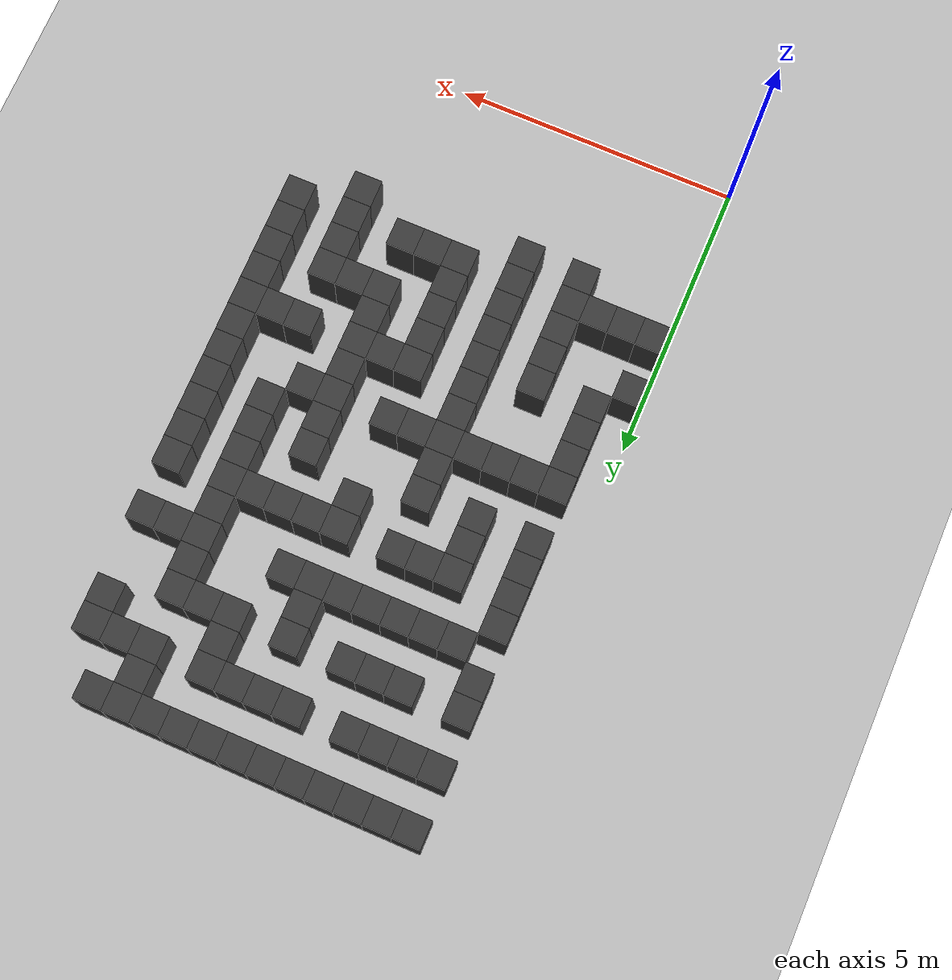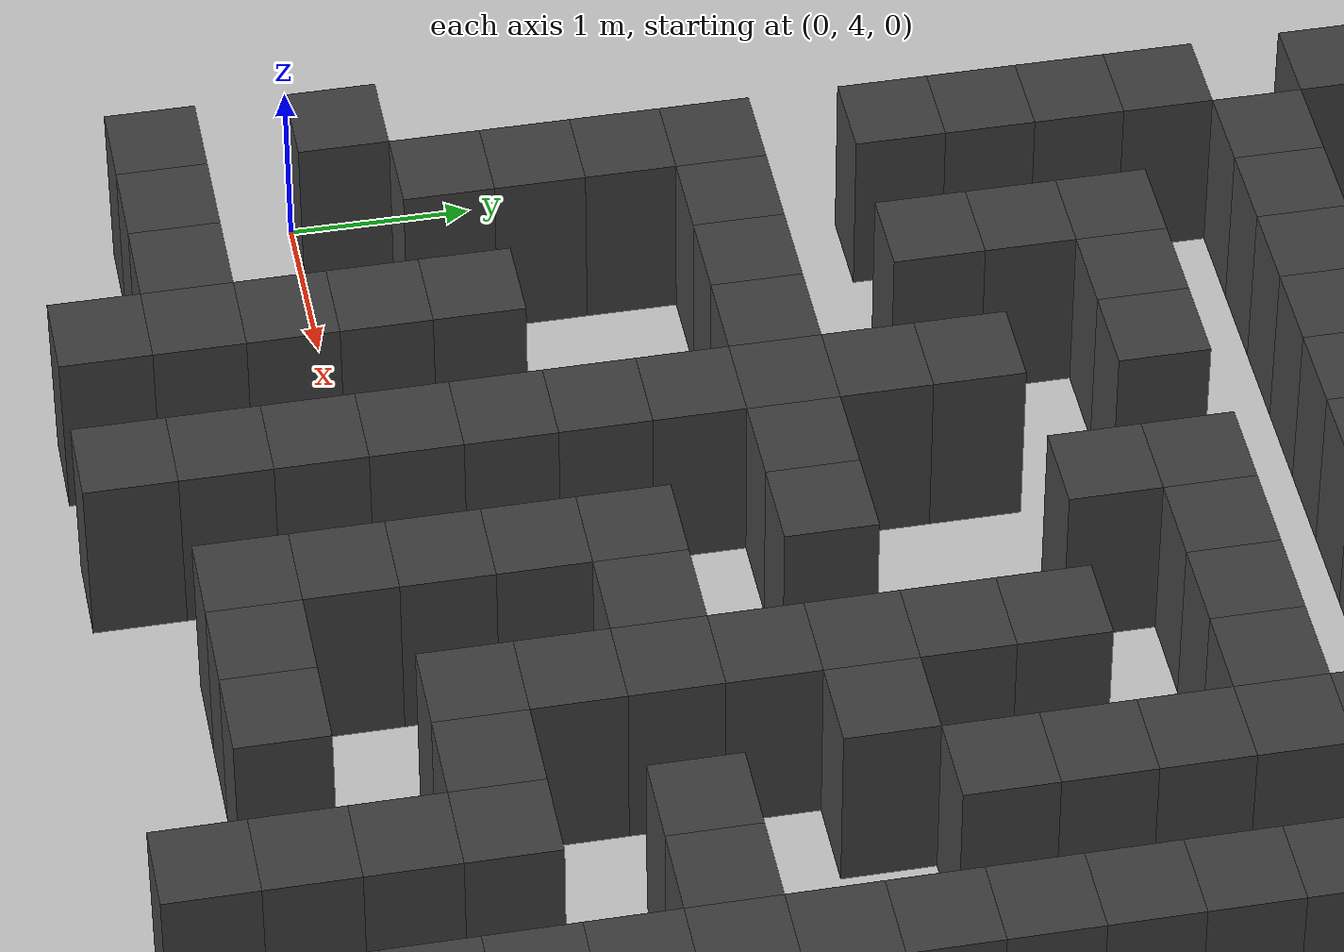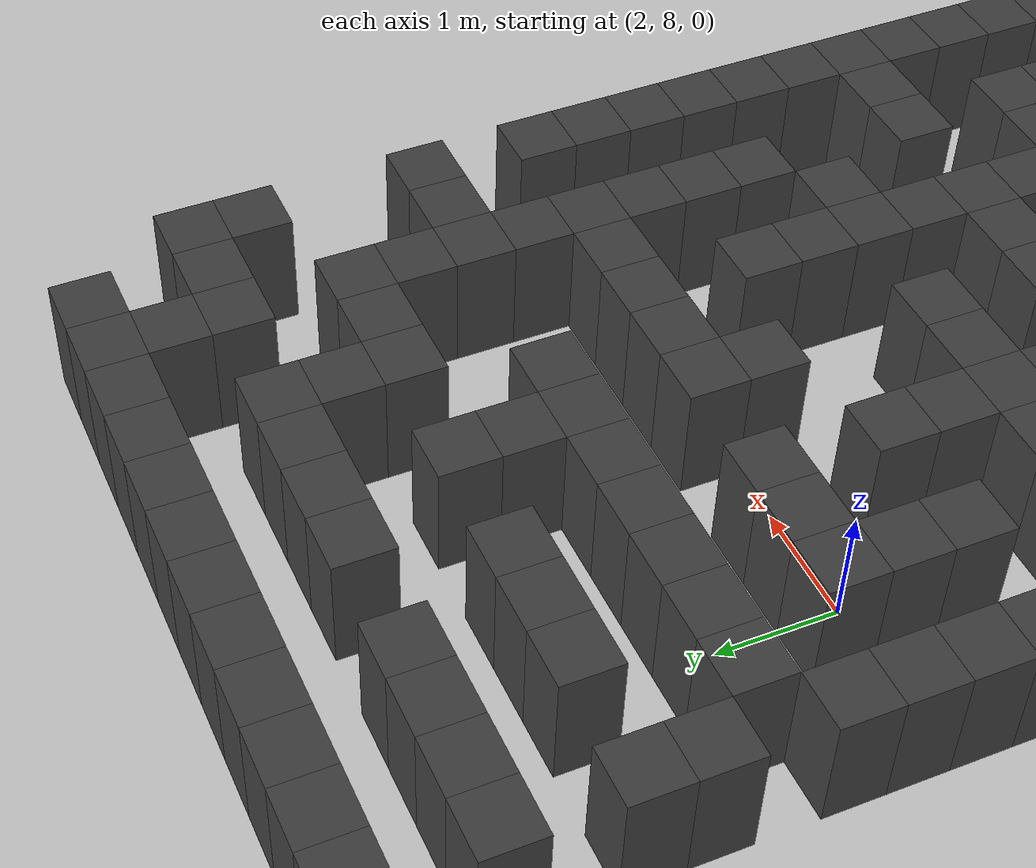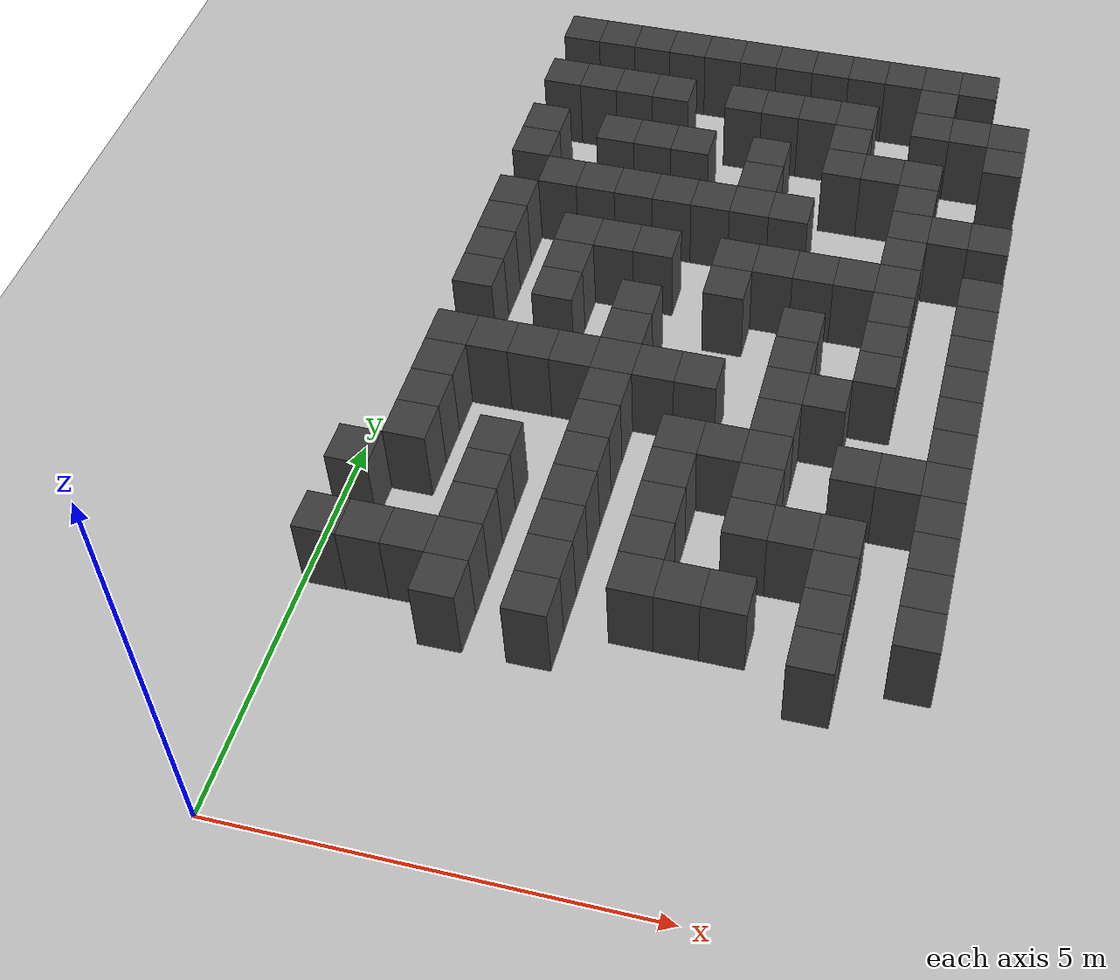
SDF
<sdf version="1.7">
 <world name="map_17503">
  <model name="ground_plane">
   <static>true</static>
   <link name="link">
    <collision name="collision">
     <geometry><plane><normal>0 0 1</normal><size>200 200</size></plane></geometry>
    </collision>
    <visual name="visual">
     <geometry><plane><normal>0 0 1</normal><size>200 200</size></plane></geometry>
     <material><ambient>0.8 0.8 0.8 1</ambient><diffuse>0.8 0.8 0.8 1</diffuse></material>
    </visual>
   </link>
  </model>
  <model name="maze_environment">
   <static>true</static>
   <link name="wall_26">
    <pose>0.750 12.250 0.500 0 0 0</pose>
    <collision name="col"><geometry><box><size>0.5 0.5 1.0</size></box></geometry></collision>
    <visual name="vis">
     <geometry><box><size>0.5 0.5 1.0</size></box></geometry>
     <material><ambient>0.15 0.15 0.15 1</ambient><diffuse>0.25 0.25 0.25 1</diffuse></material>
    </visual>
   </link>
   <link name="wall_27">
    <pose>1.250 12.250 0.500 0 0 0</pose>
    <collision name="col"><geometry><box><size>0.5 0.5 1.0</size></box></geometry></collision>
    <visual name="vis">
     <geometry><box><size>0.5 0.5 1.0</size></box></geometry>
     <material><ambient>0.15 0.15 0.15 1</ambient><diffuse>0.25 0.25 0.25 1</diffuse></material>
    </visual>
   </link>
   <link name="wall_28">
    <pose>1.750 12.250 0.500 0 0 0</pose>
    <collision name="col"><geometry><box><size>0.5 0.5 1.0</size></box></geometry></collision>
    <visual name="vis">
     <geometry><box><size>0.5 0.5 1.0</size></box></geometry>
     <material><ambient>0.15 0.15 0.15 1</ambient><diffuse>0.25 0.25 0.25 1</diffuse></material>
    </visual>
   </link>
   <link name="wall_29">
    <pose>2.250 12.250 0.500 0 0 0</pose>
    <collision name="col"><geometry><box><size>0.5 0.5 1.0</size></box></geometry></collision>
    <visual name="vis">
     <geometry><box><size>0.5 0.5 1.0</size></box></geometry>
     <material><ambient>0.15 0.15 0.15 1</ambient><diffuse>0.25 0.25 0.25 1</diffuse></material>
    </visual>
   </link>
   <link name="wall_30">
    <pose>2.750 12.250 0.500 0 0 0</pose>
    <collision name="col"><geometry><box><size>0.5 0.5 1.0</size></box></geometry></collision>
    <visual name="vis">
     <geometry><box><size>0.5 0.5 1.0</size></box></geometry>
     <material><ambient>0.15 0.15 0.15 1</ambient><diffuse>0.25 0.25 0.25 1</diffuse></material>
    </visual>
   </link>
   <link name="wall_31">
    <pose>3.250 12.250 0.500 0 0 0</pose>
    <collision name="col"><geometry><box><size>0.5 0.5 1.0</size></box></geometry></collision>
    <visual name="vis">
     <geometry><box><size>0.5 0.5 1.0</size></box></geometry>
     <material><ambient>0.15 0.15 0.15 1</ambient><diffuse>0.25 0.25 0.25 1</diffuse></material>
    </visual>
   </link>
   <link name="wall_32">
    <pose>3.750 12.250 0.500 0 0 0</pose>
    <collision name="col"><geometry><box><size>0.5 0.5 1.0</size></box></geometry></collision>
    <visual name="vis">
     <geometry><box><size>0.5 0.5 1.0</size></box></geometry>
     <material><ambient>0.15 0.15 0.15 1</ambient><diffuse>0.25 0.25 0.25 1</diffuse></material>
    </visual>
   </link>
   <link name="wall_33">
    <pose>4.250 12.250 0.500 0 0 0</pose>
    <collision name="col"><geometry><box><size>0.5 0.5 1.0</size></box></geometry></collision>
    <visual name="vis">
     <geometry><box><size>0.5 0.5 1.0</size></box></geometry>
     <material><ambient>0.15 0.15 0.15 1</ambient><diffuse>0.25 0.25 0.25 1</diffuse></material>
    </visual>
   </link>
   <link name="wall_34">
    <pose>4.750 12.250 0.500 0 0 0</pose>
    <collision name="col"><geometry><box><size>0.5 0.5 1.0</size></box></geometry></collision>
    <visual name="vis">
     <geometry><box><size>0.5 0.5 1.0</size></box></geometry>
     <material><ambient>0.15 0.15 0.15 1</ambient><diffuse>0.25 0.25 0.25 1</diffuse></material>
    </visual>
   </link>
   <link name="wall_35">
    <pose>5.250 12.250 0.500 0 0 0</pose>
    <collision name="col"><geometry><box><size>0.5 0.5 1.0</size></box></geometry></collision>
    <visual name="vis">
     <geometry><box><size>0.5 0.5 1.0</size></box></geometry>
     <material><ambient>0.15 0.15 0.15 1</ambient><diffuse>0.25 0.25 0.25 1</diffuse></material>
    </visual>
   </link>
   <link name="wall_36">
    <pose>5.750 12.250 0.500 0 0 0</pose>
    <collision name="col"><geometry><box><size>0.5 0.5 1.0</size></box></geometry></collision>
    <visual name="vis">
     <geometry><box><size>0.5 0.5 1.0</size></box></geometry>
     <material><ambient>0.15 0.15 0.15 1</ambient><diffuse>0.25 0.25 0.25 1</diffuse></material>
    </visual>
   </link>
   <link name="wall_37">
    <pose>6.250 12.250 0.500 0 0 0</pose>
    <collision name="col"><geometry><box><size>0.5 0.5 1.0</size></box></geometry></collision>
    <visual name="vis">
     <geometry><box><size>0.5 0.5 1.0</size></box></geometry>
     <material><ambient>0.15 0.15 0.15 1</ambient><diffuse>0.25 0.25 0.25 1</diffuse></material>
    </visual>
   </link>
   <link name="wall_55">
    <pose>5.750 11.750 0.500 0 0 0</pose>
    <collision name="col"><geometry><box><size>0.5 0.5 1.0</size></box></geometry></collision>
    <visual name="vis">
     <geometry><box><size>0.5 0.5 1.0</size></box></geometry>
     <material><ambient>0.15 0.15 0.15 1</ambient><diffuse>0.25 0.25 0.25 1</diffuse></material>
    </visual>
   </link>
   <link name="wall_74">
    <pose>0.750 11.250 0.500 0 0 0</pose>
    <collision name="col"><geometry><box><size>0.5 0.5 1.0</size></box></geometry></collision>
    <visual name="vis">
     <geometry><box><size>0.5 0.5 1.0</size></box></geometry>
     <material><ambient>0.15 0.15 0.15 1</ambient><diffuse>0.25 0.25 0.25 1</diffuse></material>
    </visual>
   </link>
   <link name="wall_75">
    <pose>1.250 11.250 0.500 0 0 0</pose>
    <collision name="col"><geometry><box><size>0.5 0.5 1.0</size></box></geometry></collision>
    <visual name="vis">
     <geometry><box><size>0.5 0.5 1.0</size></box></geometry>
     <material><ambient>0.15 0.15 0.15 1</ambient><diffuse>0.25 0.25 0.25 1</diffuse></material>
    </visual>
   </link>
   <link name="wall_76">
    <pose>1.750 11.250 0.500 0 0 0</pose>
    <collision name="col"><geometry><box><size>0.5 0.5 1.0</size></box></geometry></collision>
    <visual name="vis">
     <geometry><box><size>0.5 0.5 1.0</size></box></geometry>
     <material><ambient>0.15 0.15 0.15 1</ambient><diffuse>0.25 0.25 0.25 1</diffuse></material>
    </visual>
   </link>
   <link name="wall_77">
    <pose>2.250 11.250 0.500 0 0 0</pose>
    <collision name="col"><geometry><box><size>0.5 0.5 1.0</size></box></geometry></collision>
    <visual name="vis">
     <geometry><box><size>0.5 0.5 1.0</size></box></geometry>
     <material><ambient>0.15 0.15 0.15 1</ambient><diffuse>0.25 0.25 0.25 1</diffuse></material>
    </visual>
   </link>
   <link name="wall_78">
    <pose>3.250 11.250 0.500 0 0 0</pose>
    <collision name="col"><geometry><box><size>0.5 0.5 1.0</size></box></geometry></collision>
    <visual name="vis">
     <geometry><box><size>0.5 0.5 1.0</size></box></geometry>
     <material><ambient>0.15 0.15 0.15 1</ambient><diffuse>0.25 0.25 0.25 1</diffuse></material>
    </visual>
   </link>
   <link name="wall_79">
    <pose>3.750 11.250 0.500 0 0 0</pose>
    <collision name="col"><geometry><box><size>0.5 0.5 1.0</size></box></geometry></collision>
    <visual name="vis">
     <geometry><box><size>0.5 0.5 1.0</size></box></geometry>
     <material><ambient>0.15 0.15 0.15 1</ambient><diffuse>0.25 0.25 0.25 1</diffuse></material>
    </visual>
   </link>
   <link name="wall_80">
    <pose>4.250 11.250 0.500 0 0 0</pose>
    <collision name="col"><geometry><box><size>0.5 0.5 1.0</size></box></geometry></collision>
    <visual name="vis">
     <geometry><box><size>0.5 0.5 1.0</size></box></geometry>
     <material><ambient>0.15 0.15 0.15 1</ambient><diffuse>0.25 0.25 0.25 1</diffuse></material>
    </visual>
   </link>
   <link name="wall_81">
    <pose>4.750 11.250 0.500 0 0 0</pose>
    <collision name="col"><geometry><box><size>0.5 0.5 1.0</size></box></geometry></collision>
    <visual name="vis">
     <geometry><box><size>0.5 0.5 1.0</size></box></geometry>
     <material><ambient>0.15 0.15 0.15 1</ambient><diffuse>0.25 0.25 0.25 1</diffuse></material>
    </visual>
   </link>
   <link name="wall_82">
    <pose>5.750 11.250 0.500 0 0 0</pose>
    <collision name="col"><geometry><box><size>0.5 0.5 1.0</size></box></geometry></collision>
    <visual name="vis">
     <geometry><box><size>0.5 0.5 1.0</size></box></geometry>
     <material><ambient>0.15 0.15 0.15 1</ambient><diffuse>0.25 0.25 0.25 1</diffuse></material>
    </visual>
   </link>
   <link name="wall_83">
    <pose>6.250 11.250 0.500 0 0 0</pose>
    <collision name="col"><geometry><box><size>0.5 0.5 1.0</size></box></geometry></collision>
    <visual name="vis">
     <geometry><box><size>0.5 0.5 1.0</size></box></geometry>
     <material><ambient>0.15 0.15 0.15 1</ambient><diffuse>0.25 0.25 0.25 1</diffuse></material>
    </visual>
   </link>
   <link name="wall_84">
    <pose>6.750 11.250 0.500 0 0 0</pose>
    <collision name="col"><geometry><box><size>0.5 0.5 1.0</size></box></geometry></collision>
    <visual name="vis">
     <geometry><box><size>0.5 0.5 1.0</size></box></geometry>
     <material><ambient>0.15 0.15 0.15 1</ambient><diffuse>0.25 0.25 0.25 1</diffuse></material>
    </visual>
   </link>
   <link name="wall_100">
    <pose>4.750 10.750 0.500 0 0 0</pose>
    <collision name="col"><geometry><box><size>0.5 0.5 1.0</size></box></geometry></collision>
    <visual name="vis">
     <geometry><box><size>0.5 0.5 1.0</size></box></geometry>
     <material><ambient>0.15 0.15 0.15 1</ambient><diffuse>0.25 0.25 0.25 1</diffuse></material>
    </visual>
   </link>
   <link name="wall_101">
    <pose>6.750 10.750 0.500 0 0 0</pose>
    <collision name="col"><geometry><box><size>0.5 0.5 1.0</size></box></geometry></collision>
    <visual name="vis">
     <geometry><box><size>0.5 0.5 1.0</size></box></geometry>
     <material><ambient>0.15 0.15 0.15 1</ambient><diffuse>0.25 0.25 0.25 1</diffuse></material>
    </visual>
   </link>
   <link name="wall_128">
    <pose>0.750 10.250 0.500 0 0 0</pose>
    <collision name="col"><geometry><box><size>0.5 0.5 1.0</size></box></geometry></collision>
    <visual name="vis">
     <geometry><box><size>0.5 0.5 1.0</size></box></geometry>
     <material><ambient>0.15 0.15 0.15 1</ambient><diffuse>0.25 0.25 0.25 1</diffuse></material>
    </visual>
   </link>
   <link name="wall_129">
    <pose>1.750 10.250 0.500 0 0 0</pose>
    <collision name="col"><geometry><box><size>0.5 0.5 1.0</size></box></geometry></collision>
    <visual name="vis">
     <geometry><box><size>0.5 0.5 1.0</size></box></geometry>
     <material><ambient>0.15 0.15 0.15 1</ambient><diffuse>0.25 0.25 0.25 1</diffuse></material>
    </visual>
   </link>
   <link name="wall_130">
    <pose>2.250 10.250 0.500 0 0 0</pose>
    <collision name="col"><geometry><box><size>0.5 0.5 1.0</size></box></geometry></collision>
    <visual name="vis">
     <geometry><box><size>0.5 0.5 1.0</size></box></geometry>
     <material><ambient>0.15 0.15 0.15 1</ambient><diffuse>0.25 0.25 0.25 1</diffuse></material>
    </visual>
   </link>
   <link name="wall_131">
    <pose>2.750 10.250 0.500 0 0 0</pose>
    <collision name="col"><geometry><box><size>0.5 0.5 1.0</size></box></geometry></collision>
    <visual name="vis">
     <geometry><box><size>0.5 0.5 1.0</size></box></geometry>
     <material><ambient>0.15 0.15 0.15 1</ambient><diffuse>0.25 0.25 0.25 1</diffuse></material>
    </visual>
   </link>
   <link name="wall_132">
    <pose>3.750 10.250 0.500 0 0 0</pose>
    <collision name="col"><geometry><box><size>0.5 0.5 1.0</size></box></geometry></collision>
    <visual name="vis">
     <geometry><box><size>0.5 0.5 1.0</size></box></geometry>
     <material><ambient>0.15 0.15 0.15 1</ambient><diffuse>0.25 0.25 0.25 1</diffuse></material>
    </visual>
   </link>
   <link name="wall_133">
    <pose>4.750 10.250 0.500 0 0 0</pose>
    <collision name="col"><geometry><box><size>0.5 0.5 1.0</size></box></geometry></collision>
    <visual name="vis">
     <geometry><box><size>0.5 0.5 1.0</size></box></geometry>
     <material><ambient>0.15 0.15 0.15 1</ambient><diffuse>0.25 0.25 0.25 1</diffuse></material>
    </visual>
   </link>
   <link name="wall_134">
    <pose>5.250 10.250 0.500 0 0 0</pose>
    <collision name="col"><geometry><box><size>0.5 0.5 1.0</size></box></geometry></collision>
    <visual name="vis">
     <geometry><box><size>0.5 0.5 1.0</size></box></geometry>
     <material><ambient>0.15 0.15 0.15 1</ambient><diffuse>0.25 0.25 0.25 1</diffuse></material>
    </visual>
   </link>
   <link name="wall_135">
    <pose>5.750 10.250 0.500 0 0 0</pose>
    <collision name="col"><geometry><box><size>0.5 0.5 1.0</size></box></geometry></collision>
    <visual name="vis">
     <geometry><box><size>0.5 0.5 1.0</size></box></geometry>
     <material><ambient>0.15 0.15 0.15 1</ambient><diffuse>0.25 0.25 0.25 1</diffuse></material>
    </visual>
   </link>
   <link name="wall_147">
    <pose>0.750 9.750 0.500 0 0 0</pose>
    <collision name="col"><geometry><box><size>0.5 0.5 1.0</size></box></geometry></collision>
    <visual name="vis">
     <geometry><box><size>0.5 0.5 1.0</size></box></geometry>
     <material><ambient>0.15 0.15 0.15 1</ambient><diffuse>0.25 0.25 0.25 1</diffuse></material>
    </visual>
   </link>
   <link name="wall_148">
    <pose>3.750 9.750 0.500 0 0 0</pose>
    <collision name="col"><geometry><box><size>0.5 0.5 1.0</size></box></geometry></collision>
    <visual name="vis">
     <geometry><box><size>0.5 0.5 1.0</size></box></geometry>
     <material><ambient>0.15 0.15 0.15 1</ambient><diffuse>0.25 0.25 0.25 1</diffuse></material>
    </visual>
   </link>
   <link name="wall_149">
    <pose>5.750 9.750 0.500 0 0 0</pose>
    <collision name="col"><geometry><box><size>0.5 0.5 1.0</size></box></geometry></collision>
    <visual name="vis">
     <geometry><box><size>0.5 0.5 1.0</size></box></geometry>
     <material><ambient>0.15 0.15 0.15 1</ambient><diffuse>0.25 0.25 0.25 1</diffuse></material>
    </visual>
   </link>
   <link name="wall_171">
    <pose>1.250 9.250 0.500 0 0 0</pose>
    <collision name="col"><geometry><box><size>0.5 0.5 1.0</size></box></geometry></collision>
    <visual name="vis">
     <geometry><box><size>0.5 0.5 1.0</size></box></geometry>
     <material><ambient>0.15 0.15 0.15 1</ambient><diffuse>0.25 0.25 0.25 1</diffuse></material>
    </visual>
   </link>
   <link name="wall_172">
    <pose>1.750 9.250 0.500 0 0 0</pose>
    <collision name="col"><geometry><box><size>0.5 0.5 1.0</size></box></geometry></collision>
    <visual name="vis">
     <geometry><box><size>0.5 0.5 1.0</size></box></geometry>
     <material><ambient>0.15 0.15 0.15 1</ambient><diffuse>0.25 0.25 0.25 1</diffuse></material>
    </visual>
   </link>
   <link name="wall_173">
    <pose>2.250 9.250 0.500 0 0 0</pose>
    <collision name="col"><geometry><box><size>0.5 0.5 1.0</size></box></geometry></collision>
    <visual name="vis">
     <geometry><box><size>0.5 0.5 1.0</size></box></geometry>
     <material><ambient>0.15 0.15 0.15 1</ambient><diffuse>0.25 0.25 0.25 1</diffuse></material>
    </visual>
   </link>
   <link name="wall_174">
    <pose>2.750 9.250 0.500 0 0 0</pose>
    <collision name="col"><geometry><box><size>0.5 0.5 1.0</size></box></geometry></collision>
    <visual name="vis">
     <geometry><box><size>0.5 0.5 1.0</size></box></geometry>
     <material><ambient>0.15 0.15 0.15 1</ambient><diffuse>0.25 0.25 0.25 1</diffuse></material>
    </visual>
   </link>
   <link name="wall_175">
    <pose>3.250 9.250 0.500 0 0 0</pose>
    <collision name="col"><geometry><box><size>0.5 0.5 1.0</size></box></geometry></collision>
    <visual name="vis">
     <geometry><box><size>0.5 0.5 1.0</size></box></geometry>
     <material><ambient>0.15 0.15 0.15 1</ambient><diffuse>0.25 0.25 0.25 1</diffuse></material>
    </visual>
   </link>
   <link name="wall_176">
    <pose>3.750 9.250 0.500 0 0 0</pose>
    <collision name="col"><geometry><box><size>0.5 0.5 1.0</size></box></geometry></collision>
    <visual name="vis">
     <geometry><box><size>0.5 0.5 1.0</size></box></geometry>
     <material><ambient>0.15 0.15 0.15 1</ambient><diffuse>0.25 0.25 0.25 1</diffuse></material>
    </visual>
   </link>
   <link name="wall_177">
    <pose>4.250 9.250 0.500 0 0 0</pose>
    <collision name="col"><geometry><box><size>0.5 0.5 1.0</size></box></geometry></collision>
    <visual name="vis">
     <geometry><box><size>0.5 0.5 1.0</size></box></geometry>
     <material><ambient>0.15 0.15 0.15 1</ambient><diffuse>0.25 0.25 0.25 1</diffuse></material>
    </visual>
   </link>
   <link name="wall_178">
    <pose>5.750 9.250 0.500 0 0 0</pose>
    <collision name="col"><geometry><box><size>0.5 0.5 1.0</size></box></geometry></collision>
    <visual name="vis">
     <geometry><box><size>0.5 0.5 1.0</size></box></geometry>
     <material><ambient>0.15 0.15 0.15 1</ambient><diffuse>0.25 0.25 0.25 1</diffuse></material>
    </visual>
   </link>
   <link name="wall_179">
    <pose>6.250 9.250 0.500 0 0 0</pose>
    <collision name="col"><geometry><box><size>0.5 0.5 1.0</size></box></geometry></collision>
    <visual name="vis">
     <geometry><box><size>0.5 0.5 1.0</size></box></geometry>
     <material><ambient>0.15 0.15 0.15 1</ambient><diffuse>0.25 0.25 0.25 1</diffuse></material>
    </visual>
   </link>
   <link name="wall_180">
    <pose>6.750 9.250 0.500 0 0 0</pose>
    <collision name="col"><geometry><box><size>0.5 0.5 1.0</size></box></geometry></collision>
    <visual name="vis">
     <geometry><box><size>0.5 0.5 1.0</size></box></geometry>
     <material><ambient>0.15 0.15 0.15 1</ambient><diffuse>0.25 0.25 0.25 1</diffuse></material>
    </visual>
   </link>
   <link name="wall_196">
    <pose>0.750 8.750 0.500 0 0 0</pose>
    <collision name="col"><geometry><box><size>0.5 0.5 1.0</size></box></geometry></collision>
    <visual name="vis">
     <geometry><box><size>0.5 0.5 1.0</size></box></geometry>
     <material><ambient>0.15 0.15 0.15 1</ambient><diffuse>0.25 0.25 0.25 1</diffuse></material>
    </visual>
   </link>
   <link name="wall_197">
    <pose>5.750 8.750 0.500 0 0 0</pose>
    <collision name="col"><geometry><box><size>0.5 0.5 1.0</size></box></geometry></collision>
    <visual name="vis">
     <geometry><box><size>0.5 0.5 1.0</size></box></geometry>
     <material><ambient>0.15 0.15 0.15 1</ambient><diffuse>0.25 0.25 0.25 1</diffuse></material>
    </visual>
   </link>
   <link name="wall_219">
    <pose>0.750 8.250 0.500 0 0 0</pose>
    <collision name="col"><geometry><box><size>0.5 0.5 1.0</size></box></geometry></collision>
    <visual name="vis">
     <geometry><box><size>0.5 0.5 1.0</size></box></geometry>
     <material><ambient>0.15 0.15 0.15 1</ambient><diffuse>0.25 0.25 0.25 1</diffuse></material>
    </visual>
   </link>
   <link name="wall_220">
    <pose>1.750 8.250 0.500 0 0 0</pose>
    <collision name="col"><geometry><box><size>0.5 0.5 1.0</size></box></geometry></collision>
    <visual name="vis">
     <geometry><box><size>0.5 0.5 1.0</size></box></geometry>
     <material><ambient>0.15 0.15 0.15 1</ambient><diffuse>0.25 0.25 0.25 1</diffuse></material>
    </visual>
   </link>
   <link name="wall_221">
    <pose>2.250 8.250 0.500 0 0 0</pose>
    <collision name="col"><geometry><box><size>0.5 0.5 1.0</size></box></geometry></collision>
    <visual name="vis">
     <geometry><box><size>0.5 0.5 1.0</size></box></geometry>
     <material><ambient>0.15 0.15 0.15 1</ambient><diffuse>0.25 0.25 0.25 1</diffuse></material>
    </visual>
   </link>
   <link name="wall_222">
    <pose>2.750 8.250 0.500 0 0 0</pose>
    <collision name="col"><geometry><box><size>0.5 0.5 1.0</size></box></geometry></collision>
    <visual name="vis">
     <geometry><box><size>0.5 0.5 1.0</size></box></geometry>
     <material><ambient>0.15 0.15 0.15 1</ambient><diffuse>0.25 0.25 0.25 1</diffuse></material>
    </visual>
   </link>
   <link name="wall_223">
    <pose>3.750 8.250 0.500 0 0 0</pose>
    <collision name="col"><geometry><box><size>0.5 0.5 1.0</size></box></geometry></collision>
    <visual name="vis">
     <geometry><box><size>0.5 0.5 1.0</size></box></geometry>
     <material><ambient>0.15 0.15 0.15 1</ambient><diffuse>0.25 0.25 0.25 1</diffuse></material>
    </visual>
   </link>
   <link name="wall_224">
    <pose>4.250 8.250 0.500 0 0 0</pose>
    <collision name="col"><geometry><box><size>0.5 0.5 1.0</size></box></geometry></collision>
    <visual name="vis">
     <geometry><box><size>0.5 0.5 1.0</size></box></geometry>
     <material><ambient>0.15 0.15 0.15 1</ambient><diffuse>0.25 0.25 0.25 1</diffuse></material>
    </visual>
   </link>
   <link name="wall_225">
    <pose>4.750 8.250 0.500 0 0 0</pose>
    <collision name="col"><geometry><box><size>0.5 0.5 1.0</size></box></geometry></collision>
    <visual name="vis">
     <geometry><box><size>0.5 0.5 1.0</size></box></geometry>
     <material><ambient>0.15 0.15 0.15 1</ambient><diffuse>0.25 0.25 0.25 1</diffuse></material>
    </visual>
   </link>
   <link name="wall_226">
    <pose>5.250 8.250 0.500 0 0 0</pose>
    <collision name="col"><geometry><box><size>0.5 0.5 1.0</size></box></geometry></collision>
    <visual name="vis">
     <geometry><box><size>0.5 0.5 1.0</size></box></geometry>
     <material><ambient>0.15 0.15 0.15 1</ambient><diffuse>0.25 0.25 0.25 1</diffuse></material>
    </visual>
   </link>
   <link name="wall_227">
    <pose>5.750 8.250 0.500 0 0 0</pose>
    <collision name="col"><geometry><box><size>0.5 0.5 1.0</size></box></geometry></collision>
    <visual name="vis">
     <geometry><box><size>0.5 0.5 1.0</size></box></geometry>
     <material><ambient>0.15 0.15 0.15 1</ambient><diffuse>0.25 0.25 0.25 1</diffuse></material>
    </visual>
   </link>
   <link name="wall_228">
    <pose>6.750 8.250 0.500 0 0 0</pose>
    <collision name="col"><geometry><box><size>0.5 0.5 1.0</size></box></geometry></collision>
    <visual name="vis">
     <geometry><box><size>0.5 0.5 1.0</size></box></geometry>
     <material><ambient>0.15 0.15 0.15 1</ambient><diffuse>0.25 0.25 0.25 1</diffuse></material>
    </visual>
   </link>
   <link name="wall_242">
    <pose>0.750 7.750 0.500 0 0 0</pose>
    <collision name="col"><geometry><box><size>0.5 0.5 1.0</size></box></geometry></collision>
    <visual name="vis">
     <geometry><box><size>0.5 0.5 1.0</size></box></geometry>
     <material><ambient>0.15 0.15 0.15 1</ambient><diffuse>0.25 0.25 0.25 1</diffuse></material>
    </visual>
   </link>
   <link name="wall_243">
    <pose>1.750 7.750 0.500 0 0 0</pose>
    <collision name="col"><geometry><box><size>0.5 0.5 1.0</size></box></geometry></collision>
    <visual name="vis">
     <geometry><box><size>0.5 0.5 1.0</size></box></geometry>
     <material><ambient>0.15 0.15 0.15 1</ambient><diffuse>0.25 0.25 0.25 1</diffuse></material>
    </visual>
   </link>
   <link name="wall_244">
    <pose>3.750 7.750 0.500 0 0 0</pose>
    <collision name="col"><geometry><box><size>0.5 0.5 1.0</size></box></geometry></collision>
    <visual name="vis">
     <geometry><box><size>0.5 0.5 1.0</size></box></geometry>
     <material><ambient>0.15 0.15 0.15 1</ambient><diffuse>0.25 0.25 0.25 1</diffuse></material>
    </visual>
   </link>
   <link name="wall_245">
    <pose>5.750 7.750 0.500 0 0 0</pose>
    <collision name="col"><geometry><box><size>0.5 0.5 1.0</size></box></geometry></collision>
    <visual name="vis">
     <geometry><box><size>0.5 0.5 1.0</size></box></geometry>
     <material><ambient>0.15 0.15 0.15 1</ambient><diffuse>0.25 0.25 0.25 1</diffuse></material>
    </visual>
   </link>
   <link name="wall_246">
    <pose>6.750 7.750 0.500 0 0 0</pose>
    <collision name="col"><geometry><box><size>0.5 0.5 1.0</size></box></geometry></collision>
    <visual name="vis">
     <geometry><box><size>0.5 0.5 1.0</size></box></geometry>
     <material><ambient>0.15 0.15 0.15 1</ambient><diffuse>0.25 0.25 0.25 1</diffuse></material>
    </visual>
   </link>
   <link name="wall_272">
    <pose>0.750 7.250 0.500 0 0 0</pose>
    <collision name="col"><geometry><box><size>0.5 0.5 1.0</size></box></geometry></collision>
    <visual name="vis">
     <geometry><box><size>0.5 0.5 1.0</size></box></geometry>
     <material><ambient>0.15 0.15 0.15 1</ambient><diffuse>0.25 0.25 0.25 1</diffuse></material>
    </visual>
   </link>
   <link name="wall_273">
    <pose>1.750 7.250 0.500 0 0 0</pose>
    <collision name="col"><geometry><box><size>0.5 0.5 1.0</size></box></geometry></collision>
    <visual name="vis">
     <geometry><box><size>0.5 0.5 1.0</size></box></geometry>
     <material><ambient>0.15 0.15 0.15 1</ambient><diffuse>0.25 0.25 0.25 1</diffuse></material>
    </visual>
   </link>
   <link name="wall_274">
    <pose>2.750 7.250 0.500 0 0 0</pose>
    <collision name="col"><geometry><box><size>0.5 0.5 1.0</size></box></geometry></collision>
    <visual name="vis">
     <geometry><box><size>0.5 0.5 1.0</size></box></geometry>
     <material><ambient>0.15 0.15 0.15 1</ambient><diffuse>0.25 0.25 0.25 1</diffuse></material>
    </visual>
   </link>
   <link name="wall_275">
    <pose>4.750 7.250 0.500 0 0 0</pose>
    <collision name="col"><geometry><box><size>0.5 0.5 1.0</size></box></geometry></collision>
    <visual name="vis">
     <geometry><box><size>0.5 0.5 1.0</size></box></geometry>
     <material><ambient>0.15 0.15 0.15 1</ambient><diffuse>0.25 0.25 0.25 1</diffuse></material>
    </visual>
   </link>
   <link name="wall_276">
    <pose>5.750 7.250 0.500 0 0 0</pose>
    <collision name="col"><geometry><box><size>0.5 0.5 1.0</size></box></geometry></collision>
    <visual name="vis">
     <geometry><box><size>0.5 0.5 1.0</size></box></geometry>
     <material><ambient>0.15 0.15 0.15 1</ambient><diffuse>0.25 0.25 0.25 1</diffuse></material>
    </visual>
   </link>
   <link name="wall_277">
    <pose>6.750 7.250 0.500 0 0 0</pose>
    <collision name="col"><geometry><box><size>0.5 0.5 1.0</size></box></geometry></collision>
    <visual name="vis">
     <geometry><box><size>0.5 0.5 1.0</size></box></geometry>
     <material><ambient>0.15 0.15 0.15 1</ambient><diffuse>0.25 0.25 0.25 1</diffuse></material>
    </visual>
   </link>
   <link name="wall_290">
    <pose>2.750 6.750 0.500 0 0 0</pose>
    <collision name="col"><geometry><box><size>0.5 0.5 1.0</size></box></geometry></collision>
    <visual name="vis">
     <geometry><box><size>0.5 0.5 1.0</size></box></geometry>
     <material><ambient>0.15 0.15 0.15 1</ambient><diffuse>0.25 0.25 0.25 1</diffuse></material>
    </visual>
   </link>
   <link name="wall_291">
    <pose>4.750 6.750 0.500 0 0 0</pose>
    <collision name="col"><geometry><box><size>0.5 0.5 1.0</size></box></geometry></collision>
    <visual name="vis">
     <geometry><box><size>0.5 0.5 1.0</size></box></geometry>
     <material><ambient>0.15 0.15 0.15 1</ambient><diffuse>0.25 0.25 0.25 1</diffuse></material>
    </visual>
   </link>
   <link name="wall_292">
    <pose>5.750 6.750 0.500 0 0 0</pose>
    <collision name="col"><geometry><box><size>0.5 0.5 1.0</size></box></geometry></collision>
    <visual name="vis">
     <geometry><box><size>0.5 0.5 1.0</size></box></geometry>
     <material><ambient>0.15 0.15 0.15 1</ambient><diffuse>0.25 0.25 0.25 1</diffuse></material>
    </visual>
   </link>
   <link name="wall_293">
    <pose>6.750 6.750 0.500 0 0 0</pose>
    <collision name="col"><geometry><box><size>0.5 0.5 1.0</size></box></geometry></collision>
    <visual name="vis">
     <geometry><box><size>0.5 0.5 1.0</size></box></geometry>
     <material><ambient>0.15 0.15 0.15 1</ambient><diffuse>0.25 0.25 0.25 1</diffuse></material>
    </visual>
   </link>
   <link name="wall_314">
    <pose>0.750 6.250 0.500 0 0 0</pose>
    <collision name="col"><geometry><box><size>0.5 0.5 1.0</size></box></geometry></collision>
    <visual name="vis">
     <geometry><box><size>0.5 0.5 1.0</size></box></geometry>
     <material><ambient>0.15 0.15 0.15 1</ambient><diffuse>0.25 0.25 0.25 1</diffuse></material>
    </visual>
   </link>
   <link name="wall_315">
    <pose>1.250 6.250 0.500 0 0 0</pose>
    <collision name="col"><geometry><box><size>0.5 0.5 1.0</size></box></geometry></collision>
    <visual name="vis">
     <geometry><box><size>0.5 0.5 1.0</size></box></geometry>
     <material><ambient>0.15 0.15 0.15 1</ambient><diffuse>0.25 0.25 0.25 1</diffuse></material>
    </visual>
   </link>
   <link name="wall_316">
    <pose>1.750 6.250 0.500 0 0 0</pose>
    <collision name="col"><geometry><box><size>0.5 0.5 1.0</size></box></geometry></collision>
    <visual name="vis">
     <geometry><box><size>0.5 0.5 1.0</size></box></geometry>
     <material><ambient>0.15 0.15 0.15 1</ambient><diffuse>0.25 0.25 0.25 1</diffuse></material>
    </visual>
   </link>
   <link name="wall_317">
    <pose>2.250 6.250 0.500 0 0 0</pose>
    <collision name="col"><geometry><box><size>0.5 0.5 1.0</size></box></geometry></collision>
    <visual name="vis">
     <geometry><box><size>0.5 0.5 1.0</size></box></geometry>
     <material><ambient>0.15 0.15 0.15 1</ambient><diffuse>0.25 0.25 0.25 1</diffuse></material>
    </visual>
   </link>
   <link name="wall_318">
    <pose>2.750 6.250 0.500 0 0 0</pose>
    <collision name="col"><geometry><box><size>0.5 0.5 1.0</size></box></geometry></collision>
    <visual name="vis">
     <geometry><box><size>0.5 0.5 1.0</size></box></geometry>
     <material><ambient>0.15 0.15 0.15 1</ambient><diffuse>0.25 0.25 0.25 1</diffuse></material>
    </visual>
   </link>
   <link name="wall_319">
    <pose>3.250 6.250 0.500 0 0 0</pose>
    <collision name="col"><geometry><box><size>0.5 0.5 1.0</size></box></geometry></collision>
    <visual name="vis">
     <geometry><box><size>0.5 0.5 1.0</size></box></geometry>
     <material><ambient>0.15 0.15 0.15 1</ambient><diffuse>0.25 0.25 0.25 1</diffuse></material>
    </visual>
   </link>
   <link name="wall_320">
    <pose>3.750 6.250 0.500 0 0 0</pose>
    <collision name="col"><geometry><box><size>0.5 0.5 1.0</size></box></geometry></collision>
    <visual name="vis">
     <geometry><box><size>0.5 0.5 1.0</size></box></geometry>
     <material><ambient>0.15 0.15 0.15 1</ambient><diffuse>0.25 0.25 0.25 1</diffuse></material>
    </visual>
   </link>
   <link name="wall_321">
    <pose>4.750 6.250 0.500 0 0 0</pose>
    <collision name="col"><geometry><box><size>0.5 0.5 1.0</size></box></geometry></collision>
    <visual name="vis">
     <geometry><box><size>0.5 0.5 1.0</size></box></geometry>
     <material><ambient>0.15 0.15 0.15 1</ambient><diffuse>0.25 0.25 0.25 1</diffuse></material>
    </visual>
   </link>
   <link name="wall_322">
    <pose>5.250 6.250 0.500 0 0 0</pose>
    <collision name="col"><geometry><box><size>0.5 0.5 1.0</size></box></geometry></collision>
    <visual name="vis">
     <geometry><box><size>0.5 0.5 1.0</size></box></geometry>
     <material><ambient>0.15 0.15 0.15 1</ambient><diffuse>0.25 0.25 0.25 1</diffuse></material>
    </visual>
   </link>
   <link name="wall_323">
    <pose>6.750 6.250 0.500 0 0 0</pose>
    <collision name="col"><geometry><box><size>0.5 0.5 1.0</size></box></geometry></collision>
    <visual name="vis">
     <geometry><box><size>0.5 0.5 1.0</size></box></geometry>
     <material><ambient>0.15 0.15 0.15 1</ambient><diffuse>0.25 0.25 0.25 1</diffuse></material>
    </visual>
   </link>
   <link name="wall_339">
    <pose>0.750 5.750 0.500 0 0 0</pose>
    <collision name="col"><geometry><box><size>0.5 0.5 1.0</size></box></geometry></collision>
    <visual name="vis">
     <geometry><box><size>0.5 0.5 1.0</size></box></geometry>
     <material><ambient>0.15 0.15 0.15 1</ambient><diffuse>0.25 0.25 0.25 1</diffuse></material>
    </visual>
   </link>
   <link name="wall_340">
    <pose>2.750 5.750 0.500 0 0 0</pose>
    <collision name="col"><geometry><box><size>0.5 0.5 1.0</size></box></geometry></collision>
    <visual name="vis">
     <geometry><box><size>0.5 0.5 1.0</size></box></geometry>
     <material><ambient>0.15 0.15 0.15 1</ambient><diffuse>0.25 0.25 0.25 1</diffuse></material>
    </visual>
   </link>
   <link name="wall_341">
    <pose>4.750 5.750 0.500 0 0 0</pose>
    <collision name="col"><geometry><box><size>0.5 0.5 1.0</size></box></geometry></collision>
    <visual name="vis">
     <geometry><box><size>0.5 0.5 1.0</size></box></geometry>
     <material><ambient>0.15 0.15 0.15 1</ambient><diffuse>0.25 0.25 0.25 1</diffuse></material>
    </visual>
   </link>
   <link name="wall_342">
    <pose>6.750 5.750 0.500 0 0 0</pose>
    <collision name="col"><geometry><box><size>0.5 0.5 1.0</size></box></geometry></collision>
    <visual name="vis">
     <geometry><box><size>0.5 0.5 1.0</size></box></geometry>
     <material><ambient>0.15 0.15 0.15 1</ambient><diffuse>0.25 0.25 0.25 1</diffuse></material>
    </visual>
   </link>
   <link name="wall_363">
    <pose>0.750 5.250 0.500 0 0 0</pose>
    <collision name="col"><geometry><box><size>0.5 0.5 1.0</size></box></geometry></collision>
    <visual name="vis">
     <geometry><box><size>0.5 0.5 1.0</size></box></geometry>
     <material><ambient>0.15 0.15 0.15 1</ambient><diffuse>0.25 0.25 0.25 1</diffuse></material>
    </visual>
   </link>
   <link name="wall_364">
    <pose>2.750 5.250 0.500 0 0 0</pose>
    <collision name="col"><geometry><box><size>0.5 0.5 1.0</size></box></geometry></collision>
    <visual name="vis">
     <geometry><box><size>0.5 0.5 1.0</size></box></geometry>
     <material><ambient>0.15 0.15 0.15 1</ambient><diffuse>0.25 0.25 0.25 1</diffuse></material>
    </visual>
   </link>
   <link name="wall_365">
    <pose>3.750 5.250 0.500 0 0 0</pose>
    <collision name="col"><geometry><box><size>0.5 0.5 1.0</size></box></geometry></collision>
    <visual name="vis">
     <geometry><box><size>0.5 0.5 1.0</size></box></geometry>
     <material><ambient>0.15 0.15 0.15 1</ambient><diffuse>0.25 0.25 0.25 1</diffuse></material>
    </visual>
   </link>
   <link name="wall_366">
    <pose>4.250 5.250 0.500 0 0 0</pose>
    <collision name="col"><geometry><box><size>0.5 0.5 1.0</size></box></geometry></collision>
    <visual name="vis">
     <geometry><box><size>0.5 0.5 1.0</size></box></geometry>
     <material><ambient>0.15 0.15 0.15 1</ambient><diffuse>0.25 0.25 0.25 1</diffuse></material>
    </visual>
   </link>
   <link name="wall_367">
    <pose>4.750 5.250 0.500 0 0 0</pose>
    <collision name="col"><geometry><box><size>0.5 0.5 1.0</size></box></geometry></collision>
    <visual name="vis">
     <geometry><box><size>0.5 0.5 1.0</size></box></geometry>
     <material><ambient>0.15 0.15 0.15 1</ambient><diffuse>0.25 0.25 0.25 1</diffuse></material>
    </visual>
   </link>
   <link name="wall_368">
    <pose>5.750 5.250 0.500 0 0 0</pose>
    <collision name="col"><geometry><box><size>0.5 0.5 1.0</size></box></geometry></collision>
    <visual name="vis">
     <geometry><box><size>0.5 0.5 1.0</size></box></geometry>
     <material><ambient>0.15 0.15 0.15 1</ambient><diffuse>0.25 0.25 0.25 1</diffuse></material>
    </visual>
   </link>
   <link name="wall_369">
    <pose>6.250 5.250 0.500 0 0 0</pose>
    <collision name="col"><geometry><box><size>0.5 0.5 1.0</size></box></geometry></collision>
    <visual name="vis">
     <geometry><box><size>0.5 0.5 1.0</size></box></geometry>
     <material><ambient>0.15 0.15 0.15 1</ambient><diffuse>0.25 0.25 0.25 1</diffuse></material>
    </visual>
   </link>
   <link name="wall_370">
    <pose>6.750 5.250 0.500 0 0 0</pose>
    <collision name="col"><geometry><box><size>0.5 0.5 1.0</size></box></geometry></collision>
    <visual name="vis">
     <geometry><box><size>0.5 0.5 1.0</size></box></geometry>
     <material><ambient>0.15 0.15 0.15 1</ambient><diffuse>0.25 0.25 0.25 1</diffuse></material>
    </visual>
   </link>
   <link name="wall_386">
    <pose>0.750 4.750 0.500 0 0 0</pose>
    <collision name="col"><geometry><box><size>0.5 0.5 1.0</size></box></geometry></collision>
    <visual name="vis">
     <geometry><box><size>0.5 0.5 1.0</size></box></geometry>
     <material><ambient>0.15 0.15 0.15 1</ambient><diffuse>0.25 0.25 0.25 1</diffuse></material>
    </visual>
   </link>
   <link name="wall_387">
    <pose>1.750 4.750 0.500 0 0 0</pose>
    <collision name="col"><geometry><box><size>0.5 0.5 1.0</size></box></geometry></collision>
    <visual name="vis">
     <geometry><box><size>0.5 0.5 1.0</size></box></geometry>
     <material><ambient>0.15 0.15 0.15 1</ambient><diffuse>0.25 0.25 0.25 1</diffuse></material>
    </visual>
   </link>
   <link name="wall_388">
    <pose>2.750 4.750 0.500 0 0 0</pose>
    <collision name="col"><geometry><box><size>0.5 0.5 1.0</size></box></geometry></collision>
    <visual name="vis">
     <geometry><box><size>0.5 0.5 1.0</size></box></geometry>
     <material><ambient>0.15 0.15 0.15 1</ambient><diffuse>0.25 0.25 0.25 1</diffuse></material>
    </visual>
   </link>
   <link name="wall_389">
    <pose>3.750 4.750 0.500 0 0 0</pose>
    <collision name="col"><geometry><box><size>0.5 0.5 1.0</size></box></geometry></collision>
    <visual name="vis">
     <geometry><box><size>0.5 0.5 1.0</size></box></geometry>
     <material><ambient>0.15 0.15 0.15 1</ambient><diffuse>0.25 0.25 0.25 1</diffuse></material>
    </visual>
   </link>
   <link name="wall_390">
    <pose>4.750 4.750 0.500 0 0 0</pose>
    <collision name="col"><geometry><box><size>0.5 0.5 1.0</size></box></geometry></collision>
    <visual name="vis">
     <geometry><box><size>0.5 0.5 1.0</size></box></geometry>
     <material><ambient>0.15 0.15 0.15 1</ambient><diffuse>0.25 0.25 0.25 1</diffuse></material>
    </visual>
   </link>
   <link name="wall_391">
    <pose>6.750 4.750 0.500 0 0 0</pose>
    <collision name="col"><geometry><box><size>0.5 0.5 1.0</size></box></geometry></collision>
    <visual name="vis">
     <geometry><box><size>0.5 0.5 1.0</size></box></geometry>
     <material><ambient>0.15 0.15 0.15 1</ambient><diffuse>0.25 0.25 0.25 1</diffuse></material>
    </visual>
   </link>
   <link name="wall_413">
    <pose>0.250 4.250 0.500 0 0 0</pose>
    <collision name="col"><geometry><box><size>0.5 0.5 1.0</size></box></geometry></collision>
    <visual name="vis">
     <geometry><box><size>0.5 0.5 1.0</size></box></geometry>
     <material><ambient>0.15 0.15 0.15 1</ambient><diffuse>0.25 0.25 0.25 1</diffuse></material>
    </visual>
   </link>
   <link name="wall_414">
    <pose>1.750 4.250 0.500 0 0 0</pose>
    <collision name="col"><geometry><box><size>0.5 0.5 1.0</size></box></geometry></collision>
    <visual name="vis">
     <geometry><box><size>0.5 0.5 1.0</size></box></geometry>
     <material><ambient>0.15 0.15 0.15 1</ambient><diffuse>0.25 0.25 0.25 1</diffuse></material>
    </visual>
   </link>
   <link name="wall_415">
    <pose>2.750 4.250 0.500 0 0 0</pose>
    <collision name="col"><geometry><box><size>0.5 0.5 1.0</size></box></geometry></collision>
    <visual name="vis">
     <geometry><box><size>0.5 0.5 1.0</size></box></geometry>
     <material><ambient>0.15 0.15 0.15 1</ambient><diffuse>0.25 0.25 0.25 1</diffuse></material>
    </visual>
   </link>
   <link name="wall_416">
    <pose>3.750 4.250 0.500 0 0 0</pose>
    <collision name="col"><geometry><box><size>0.5 0.5 1.0</size></box></geometry></collision>
    <visual name="vis">
     <geometry><box><size>0.5 0.5 1.0</size></box></geometry>
     <material><ambient>0.15 0.15 0.15 1</ambient><diffuse>0.25 0.25 0.25 1</diffuse></material>
    </visual>
   </link>
   <link name="wall_417">
    <pose>4.750 4.250 0.500 0 0 0</pose>
    <collision name="col"><geometry><box><size>0.5 0.5 1.0</size></box></geometry></collision>
    <visual name="vis">
     <geometry><box><size>0.5 0.5 1.0</size></box></geometry>
     <material><ambient>0.15 0.15 0.15 1</ambient><diffuse>0.25 0.25 0.25 1</diffuse></material>
    </visual>
   </link>
   <link name="wall_418">
    <pose>5.250 4.250 0.500 0 0 0</pose>
    <collision name="col"><geometry><box><size>0.5 0.5 1.0</size></box></geometry></collision>
    <visual name="vis">
     <geometry><box><size>0.5 0.5 1.0</size></box></geometry>
     <material><ambient>0.15 0.15 0.15 1</ambient><diffuse>0.25 0.25 0.25 1</diffuse></material>
    </visual>
   </link>
   <link name="wall_419">
    <pose>5.750 4.250 0.500 0 0 0</pose>
    <collision name="col"><geometry><box><size>0.5 0.5 1.0</size></box></geometry></collision>
    <visual name="vis">
     <geometry><box><size>0.5 0.5 1.0</size></box></geometry>
     <material><ambient>0.15 0.15 0.15 1</ambient><diffuse>0.25 0.25 0.25 1</diffuse></material>
    </visual>
   </link>
   <link name="wall_420">
    <pose>6.750 4.250 0.500 0 0 0</pose>
    <collision name="col"><geometry><box><size>0.5 0.5 1.0</size></box></geometry></collision>
    <visual name="vis">
     <geometry><box><size>0.5 0.5 1.0</size></box></geometry>
     <material><ambient>0.15 0.15 0.15 1</ambient><diffuse>0.25 0.25 0.25 1</diffuse></material>
    </visual>
   </link>
   <link name="wall_436">
    <pose>1.750 3.750 0.500 0 0 0</pose>
    <collision name="col"><geometry><box><size>0.5 0.5 1.0</size></box></geometry></collision>
    <visual name="vis">
     <geometry><box><size>0.5 0.5 1.0</size></box></geometry>
     <material><ambient>0.15 0.15 0.15 1</ambient><diffuse>0.25 0.25 0.25 1</diffuse></material>
    </visual>
   </link>
   <link name="wall_437">
    <pose>2.750 3.750 0.500 0 0 0</pose>
    <collision name="col"><geometry><box><size>0.5 0.5 1.0</size></box></geometry></collision>
    <visual name="vis">
     <geometry><box><size>0.5 0.5 1.0</size></box></geometry>
     <material><ambient>0.15 0.15 0.15 1</ambient><diffuse>0.25 0.25 0.25 1</diffuse></material>
    </visual>
   </link>
   <link name="wall_438">
    <pose>3.750 3.750 0.500 0 0 0</pose>
    <collision name="col"><geometry><box><size>0.5 0.5 1.0</size></box></geometry></collision>
    <visual name="vis">
     <geometry><box><size>0.5 0.5 1.0</size></box></geometry>
     <material><ambient>0.15 0.15 0.15 1</ambient><diffuse>0.25 0.25 0.25 1</diffuse></material>
    </visual>
   </link>
   <link name="wall_439">
    <pose>5.750 3.750 0.500 0 0 0</pose>
    <collision name="col"><geometry><box><size>0.5 0.5 1.0</size></box></geometry></collision>
    <visual name="vis">
     <geometry><box><size>0.5 0.5 1.0</size></box></geometry>
     <material><ambient>0.15 0.15 0.15 1</ambient><diffuse>0.25 0.25 0.25 1</diffuse></material>
    </visual>
   </link>
   <link name="wall_440">
    <pose>6.750 3.750 0.500 0 0 0</pose>
    <collision name="col"><geometry><box><size>0.5 0.5 1.0</size></box></geometry></collision>
    <visual name="vis">
     <geometry><box><size>0.5 0.5 1.0</size></box></geometry>
     <material><ambient>0.15 0.15 0.15 1</ambient><diffuse>0.25 0.25 0.25 1</diffuse></material>
    </visual>
   </link>
   <link name="wall_463">
    <pose>0.250 3.250 0.500 0 0 0</pose>
    <collision name="col"><geometry><box><size>0.5 0.5 1.0</size></box></geometry></collision>
    <visual name="vis">
     <geometry><box><size>0.5 0.5 1.0</size></box></geometry>
     <material><ambient>0.15 0.15 0.15 1</ambient><diffuse>0.25 0.25 0.25 1</diffuse></material>
    </visual>
   </link>
   <link name="wall_464">
    <pose>0.750 3.250 0.500 0 0 0</pose>
    <collision name="col"><geometry><box><size>0.5 0.5 1.0</size></box></geometry></collision>
    <visual name="vis">
     <geometry><box><size>0.5 0.5 1.0</size></box></geometry>
     <material><ambient>0.15 0.15 0.15 1</ambient><diffuse>0.25 0.25 0.25 1</diffuse></material>
    </visual>
   </link>
   <link name="wall_465">
    <pose>1.250 3.250 0.500 0 0 0</pose>
    <collision name="col"><geometry><box><size>0.5 0.5 1.0</size></box></geometry></collision>
    <visual name="vis">
     <geometry><box><size>0.5 0.5 1.0</size></box></geometry>
     <material><ambient>0.15 0.15 0.15 1</ambient><diffuse>0.25 0.25 0.25 1</diffuse></material>
    </visual>
   </link>
   <link name="wall_466">
    <pose>1.750 3.250 0.500 0 0 0</pose>
    <collision name="col"><geometry><box><size>0.5 0.5 1.0</size></box></geometry></collision>
    <visual name="vis">
     <geometry><box><size>0.5 0.5 1.0</size></box></geometry>
     <material><ambient>0.15 0.15 0.15 1</ambient><diffuse>0.25 0.25 0.25 1</diffuse></material>
    </visual>
   </link>
   <link name="wall_467">
    <pose>2.750 3.250 0.500 0 0 0</pose>
    <collision name="col"><geometry><box><size>0.5 0.5 1.0</size></box></geometry></collision>
    <visual name="vis">
     <geometry><box><size>0.5 0.5 1.0</size></box></geometry>
     <material><ambient>0.15 0.15 0.15 1</ambient><diffuse>0.25 0.25 0.25 1</diffuse></material>
    </visual>
   </link>
   <link name="wall_468">
    <pose>3.750 3.250 0.500 0 0 0</pose>
    <collision name="col"><geometry><box><size>0.5 0.5 1.0</size></box></geometry></collision>
    <visual name="vis">
     <geometry><box><size>0.5 0.5 1.0</size></box></geometry>
     <material><ambient>0.15 0.15 0.15 1</ambient><diffuse>0.25 0.25 0.25 1</diffuse></material>
    </visual>
   </link>
   <link name="wall_469">
    <pose>4.250 3.250 0.500 0 0 0</pose>
    <collision name="col"><geometry><box><size>0.5 0.5 1.0</size></box></geometry></collision>
    <visual name="vis">
     <geometry><box><size>0.5 0.5 1.0</size></box></geometry>
     <material><ambient>0.15 0.15 0.15 1</ambient><diffuse>0.25 0.25 0.25 1</diffuse></material>
    </visual>
   </link>
   <link name="wall_470">
    <pose>4.750 3.250 0.500 0 0 0</pose>
    <collision name="col"><geometry><box><size>0.5 0.5 1.0</size></box></geometry></collision>
    <visual name="vis">
     <geometry><box><size>0.5 0.5 1.0</size></box></geometry>
     <material><ambient>0.15 0.15 0.15 1</ambient><diffuse>0.25 0.25 0.25 1</diffuse></material>
    </visual>
   </link>
   <link name="wall_471">
    <pose>5.750 3.250 0.500 0 0 0</pose>
    <collision name="col"><geometry><box><size>0.5 0.5 1.0</size></box></geometry></collision>
    <visual name="vis">
     <geometry><box><size>0.5 0.5 1.0</size></box></geometry>
     <material><ambient>0.15 0.15 0.15 1</ambient><diffuse>0.25 0.25 0.25 1</diffuse></material>
    </visual>
   </link>
   <link name="wall_472">
    <pose>6.750 3.250 0.500 0 0 0</pose>
    <collision name="col"><geometry><box><size>0.5 0.5 1.0</size></box></geometry></collision>
    <visual name="vis">
     <geometry><box><size>0.5 0.5 1.0</size></box></geometry>
     <material><ambient>0.15 0.15 0.15 1</ambient><diffuse>0.25 0.25 0.25 1</diffuse></material>
    </visual>
   </link>
   <link name="wall_488">
    <pose>1.750 2.750 0.500 0 0 0</pose>
    <collision name="col"><geometry><box><size>0.5 0.5 1.0</size></box></geometry></collision>
    <visual name="vis">
     <geometry><box><size>0.5 0.5 1.0</size></box></geometry>
     <material><ambient>0.15 0.15 0.15 1</ambient><diffuse>0.25 0.25 0.25 1</diffuse></material>
    </visual>
   </link>
   <link name="wall_489">
    <pose>2.750 2.750 0.500 0 0 0</pose>
    <collision name="col"><geometry><box><size>0.5 0.5 1.0</size></box></geometry></collision>
    <visual name="vis">
     <geometry><box><size>0.5 0.5 1.0</size></box></geometry>
     <material><ambient>0.15 0.15 0.15 1</ambient><diffuse>0.25 0.25 0.25 1</diffuse></material>
    </visual>
   </link>
   <link name="wall_490">
    <pose>5.750 2.750 0.500 0 0 0</pose>
    <collision name="col"><geometry><box><size>0.5 0.5 1.0</size></box></geometry></collision>
    <visual name="vis">
     <geometry><box><size>0.5 0.5 1.0</size></box></geometry>
     <material><ambient>0.15 0.15 0.15 1</ambient><diffuse>0.25 0.25 0.25 1</diffuse></material>
    </visual>
   </link>
  </model>
 </world>
</sdf>
